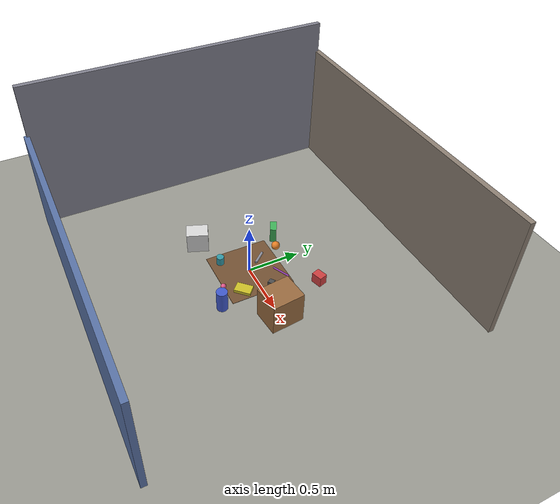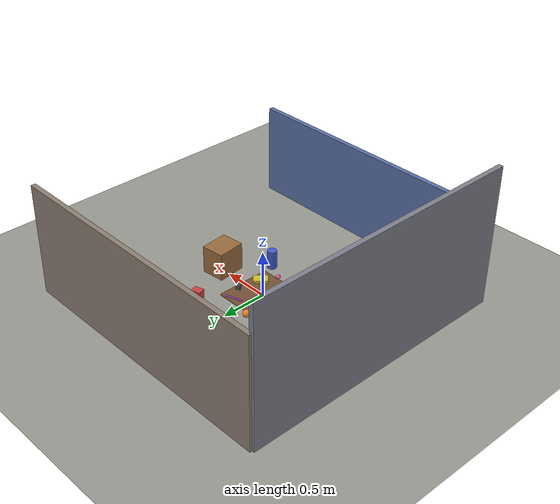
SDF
<?xml version="1.0" ?>
<sdf version="1.9">
  <world name="randomized_v2">

    <!-- Physics -->
    <physics name="default_physics" type="ode">
      <max_step_size>0.004</max_step_size>
      <real_time_factor>0</real_time_factor>
    </physics>

    <!-- ============== LIGHTS ============== -->

    <!-- Sun (main directional, randomizable) -->
    <light type="directional" name="sun">
      <cast_shadows>true</cast_shadows>
      <pose>0 0 10 0 0 0</pose>
      <diffuse>0.9 0.9 0.85 1</diffuse>
      <specular>0.3 0.3 0.3 1</specular>
      <attenuation>
        <range>1000</range>
        <constant>0.9</constant>
        <linear>0.01</linear>
        <quadratic>0.001</quadratic>
      </attenuation>
      <direction>-0.5 0.3 -0.9</direction>
    </light>

    <!-- Fill light (softer, opposite side) -->
    <light type="directional" name="fill_light">
      <cast_shadows>false</cast_shadows>
      <pose>0 0 8 0 0 0</pose>
      <diffuse>0.4 0.4 0.5 1</diffuse>
      <specular>0.1 0.1 0.1 1</specular>
      <direction>0.5 -0.3 -0.7</direction>
    </light>

    <!-- Back light (rim effect) -->
    <light type="directional" name="back_light">
      <cast_shadows>false</cast_shadows>
      <pose>0 0 6 0 0 0</pose>
      <diffuse>0.25 0.25 0.3 1</diffuse>
      <specular>0.05 0.05 0.05 1</specular>
      <direction>0.8 0.0 -0.5</direction>
    </light>

    <!-- Warm point light (near robot, randomizable position) -->
    <light type="point" name="warm_point">
      <cast_shadows>false</cast_shadows>
      <pose>1.0 0.5 1.5 0 0 0</pose>
      <diffuse>0.6 0.5 0.3 1</diffuse>
      <specular>0.1 0.1 0.05 1</specular>
      <attenuation>
        <range>5</range>
        <constant>0.5</constant>
        <linear>0.2</linear>
        <quadratic>0.05</quadratic>
      </attenuation>
    </light>

    <!-- Cool point light (opposite side) -->
    <light type="point" name="cool_point">
      <cast_shadows>false</cast_shadows>
      <pose>-0.5 -0.8 1.2 0 0 0</pose>
      <diffuse>0.3 0.35 0.55 1</diffuse>
      <specular>0.05 0.05 0.1 1</specular>
      <attenuation>
        <range>4</range>
        <constant>0.6</constant>
        <linear>0.25</linear>
        <quadratic>0.06</quadratic>
      </attenuation>
    </light>

    <!-- Overhead spot (randomizable) -->
    <light type="point" name="overhead_spot">
      <cast_shadows>true</cast_shadows>
      <pose>0.0 0.0 2.0 0 0 0</pose>
      <diffuse>0.5 0.5 0.45 1</diffuse>
      <specular>0.15 0.15 0.15 1</specular>
      <attenuation>
        <range>6</range>
        <constant>0.4</constant>
        <linear>0.15</linear>
        <quadratic>0.04</quadratic>
      </attenuation>
    </light>

    <!-- ============== GROUND ============== -->

    <model name="ground_plane">
      <static>true</static>
      <link name="link">
        <collision name="collision">
          <geometry>
            <plane><normal>0 0 1</normal><size>20 20</size></plane>
          </geometry>
        </collision>
        <visual name="visual">
          <geometry>
            <plane><normal>0 0 1</normal><size>20 20</size></plane>
          </geometry>
          <material>
            <ambient>0.55 0.55 0.52 1</ambient>
            <diffuse>0.6 0.6 0.57 1</diffuse>
            <specular>0.1 0.1 0.1 1</specular>
          </material>
        </visual>
      </link>
    </model>

    <!-- ============== BACKGROUND SURFACES ============== -->

    <!-- Back wall -->
    <model name="back_wall">
      <static>true</static>
      <pose>-1.5 0 0.75 0 0 0</pose>
      <link name="link">
        <visual name="visual">
          <geometry><box><size>0.05 3.0 1.5</size></box></geometry>
          <material>
            <ambient>0.45 0.45 0.50 1</ambient>
            <diffuse>0.5 0.5 0.55 1</diffuse>
          </material>
        </visual>
      </link>
    </model>

    <!-- Left wall -->
    <model name="left_wall">
      <static>true</static>
      <pose>0 -1.5 0.5 0 0 0</pose>
      <link name="link">
        <visual name="visual">
          <geometry><box><size>3.0 0.05 1.0</size></box></geometry>
          <material>
            <ambient>0.3 0.4 0.6 1</ambient>
            <diffuse>0.35 0.45 0.65 1</diffuse>
          </material>
        </visual>
      </link>
    </model>

    <!-- Right wall -->
    <model name="right_wall">
      <static>true</static>
      <pose>0 1.5 0.6 0 0 0</pose>
      <link name="link">
        <visual name="visual">
          <geometry><box><size>3.0 0.05 1.2</size></box></geometry>
          <material>
            <ambient>0.5 0.45 0.4 1</ambient>
            <diffuse>0.55 0.5 0.45 1</diffuse>
          </material>
        </visual>
      </link>
    </model>

    <!-- ============== TABLE ============== -->

    <model name="table">
      <static>true</static>
      <pose>0 0 -0.02 0 0 0</pose>
      <link name="link">
        <visual name="visual">
          <geometry><box><size>0.6 0.6 0.04</size></box></geometry>
          <material>
            <ambient>0.35 0.25 0.15 1</ambient>
            <diffuse>0.45 0.32 0.2 1</diffuse>
          </material>
        </visual>
        <collision name="collision">
          <geometry><box><size>0.6 0.6 0.04</size></box></geometry>
        </collision>
      </link>
    </model>

    <!-- ============== CLUTTER OBJECTS ============== -->
    <!-- 10+ distractor objects at various positions around the workspace -->

    <!-- Red box near robot -->
    <model name="clutter_box_1">
      <static>true</static>
      <pose>0.4 0.5 0.05 0 0 0.3</pose>
      <link name="link">
        <visual name="visual">
          <geometry><box><size>0.1 0.08 0.1</size></box></geometry>
          <material>
            <ambient>0.7 0.2 0.2 1</ambient>
            <diffuse>0.8 0.25 0.25 1</diffuse>
          </material>
        </visual>
      </link>
    </model>

    <!-- Green tall box -->
    <model name="clutter_box_2">
      <static>true</static>
      <pose>-0.3 0.4 0.075 0 0 -0.5</pose>
      <link name="link">
        <visual name="visual">
          <geometry><box><size>0.12 0.06 0.15</size></box></geometry>
          <material>
            <ambient>0.2 0.6 0.3 1</ambient>
            <diffuse>0.25 0.7 0.35 1</diffuse>
          </material>
        </visual>
      </link>
    </model>

    <!-- Blue cylinder -->
    <model name="clutter_cylinder_1">
      <static>true</static>
      <pose>0.3 -0.4 0.1 0 0 0</pose>
      <link name="link">
        <visual name="visual">
          <geometry><cylinder><radius>0.05</radius><length>0.2</length></cylinder></geometry>
          <material>
            <ambient>0.2 0.3 0.7 1</ambient>
            <diffuse>0.25 0.35 0.8 1</diffuse>
          </material>
        </visual>
      </link>
    </model>

    <!-- Yellow flat box (on table) -->
    <model name="clutter_box_3">
      <static>true</static>
      <pose>0.2 -0.15 0.015 0 0 0.8</pose>
      <link name="link">
        <visual name="visual">
          <geometry><box><size>0.15 0.1 0.03</size></box></geometry>
          <material>
            <ambient>0.7 0.65 0.1 1</ambient>
            <diffuse>0.8 0.75 0.15 1</diffuse>
          </material>
        </visual>
      </link>
    </model>

    <!-- Orange sphere -->
    <model name="clutter_sphere_1">
      <static>true</static>
      <pose>-0.15 0.35 0.04 0 0 0</pose>
      <link name="link">
        <visual name="visual">
          <geometry><sphere><radius>0.04</radius></sphere></geometry>
          <material>
            <ambient>0.8 0.45 0.1 1</ambient>
            <diffuse>0.9 0.5 0.15 1</diffuse>
          </material>
        </visual>
      </link>
    </model>

    <!-- Purple thin cylinder (pen-like) -->
    <model name="clutter_cylinder_2">
      <static>true</static>
      <pose>0.15 0.25 0.01 0 1.5 0.4</pose>
      <link name="link">
        <visual name="visual">
          <geometry><cylinder><radius>0.008</radius><length>0.18</length></cylinder></geometry>
          <material>
            <ambient>0.5 0.2 0.6 1</ambient>
            <diffuse>0.6 0.25 0.7 1</diffuse>
          </material>
        </visual>
      </link>
    </model>

    <!-- White box (background) -->
    <model name="clutter_box_4">
      <static>true</static>
      <pose>-0.5 -0.3 0.1 0 0 1.2</pose>
      <link name="link">
        <visual name="visual">
          <geometry><box><size>0.2 0.15 0.2</size></box></geometry>
          <material>
            <ambient>0.8 0.8 0.8 1</ambient>
            <diffuse>0.85 0.85 0.85 1</diffuse>
          </material>
        </visual>
      </link>
    </model>

    <!-- Dark grey small cube -->
    <model name="clutter_box_5">
      <static>true</static>
      <pose>0.25 0.1 0.025 0 0 0.6</pose>
      <link name="link">
        <visual name="visual">
          <geometry><box><size>0.05 0.05 0.05</size></box></geometry>
          <material>
            <ambient>0.25 0.25 0.25 1</ambient>
            <diffuse>0.3 0.3 0.3 1</diffuse>
          </material>
        </visual>
      </link>
    </model>

    <!-- Teal cylinder (mug-like) -->
    <model name="clutter_cylinder_3">
      <static>true</static>
      <pose>-0.2 -0.2 0.04 0 0 0</pose>
      <link name="link">
        <visual name="visual">
          <geometry><cylinder><radius>0.035</radius><length>0.08</length></cylinder></geometry>
          <material>
            <ambient>0.15 0.5 0.55 1</ambient>
            <diffuse>0.2 0.6 0.65 1</diffuse>
          </material>
        </visual>
      </link>
    </model>

    <!-- Pink sphere (small ball) -->
    <model name="clutter_sphere_2">
      <static>true</static>
      <pose>0.1 -0.3 0.025 0 0 0</pose>
      <link name="link">
        <visual name="visual">
          <geometry><sphere><radius>0.025</radius></sphere></geometry>
          <material>
            <ambient>0.8 0.3 0.5 1</ambient>
            <diffuse>0.9 0.35 0.55 1</diffuse>
          </material>
        </visual>
      </link>
    </model>

    <!-- Brown box (cardboard-like, large background) -->
    <model name="clutter_box_6">
      <static>true</static>
      <pose>0.6 0.0 0.15 0 0 0.1</pose>
      <link name="link">
        <visual name="visual">
          <geometry><box><size>0.25 0.3 0.3</size></box></geometry>
          <material>
            <ambient>0.5 0.35 0.2 1</ambient>
            <diffuse>0.6 0.42 0.25 1</diffuse>
          </material>
        </visual>
      </link>
    </model>

    <!-- Metallic grey cylinder (tool-like) -->
    <model name="clutter_cylinder_4">
      <static>true</static>
      <pose>-0.1 0.15 0.01 1.57 0 0.7</pose>
      <link name="link">
        <visual name="visual">
          <geometry><cylinder><radius>0.012</radius><length>0.14</length></cylinder></geometry>
          <material>
            <ambient>0.5 0.5 0.55 1</ambient>
            <diffuse>0.6 0.6 0.65 1</diffuse>
            <specular>0.4 0.4 0.4 1</specular>
          </material>
        </visual>
      </link>
    </model>

  </world>
</sdf>
